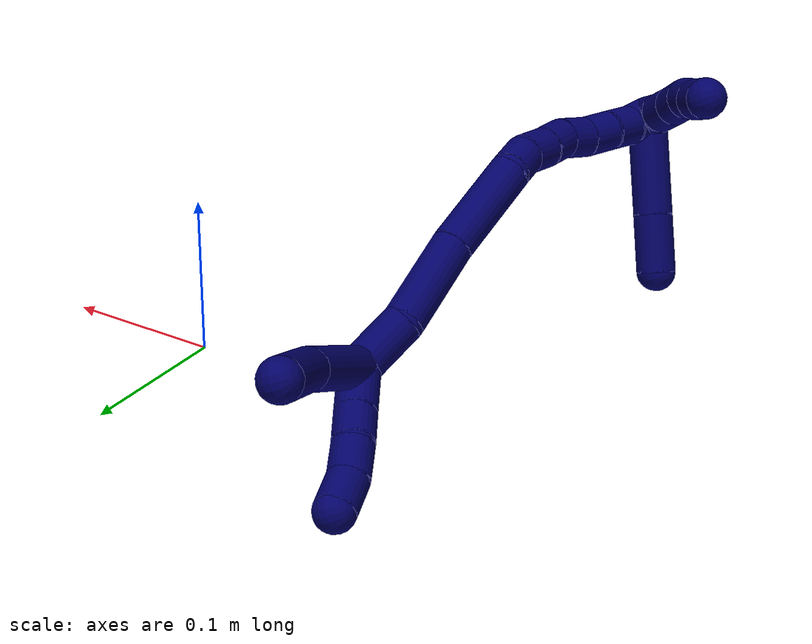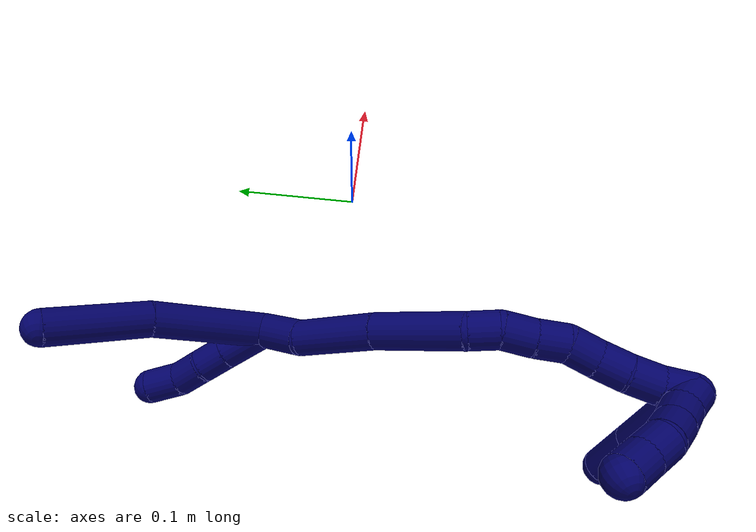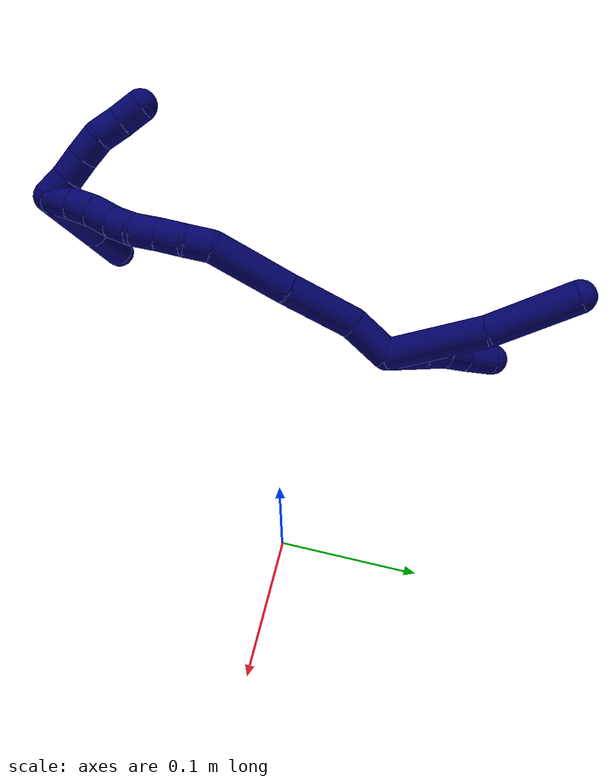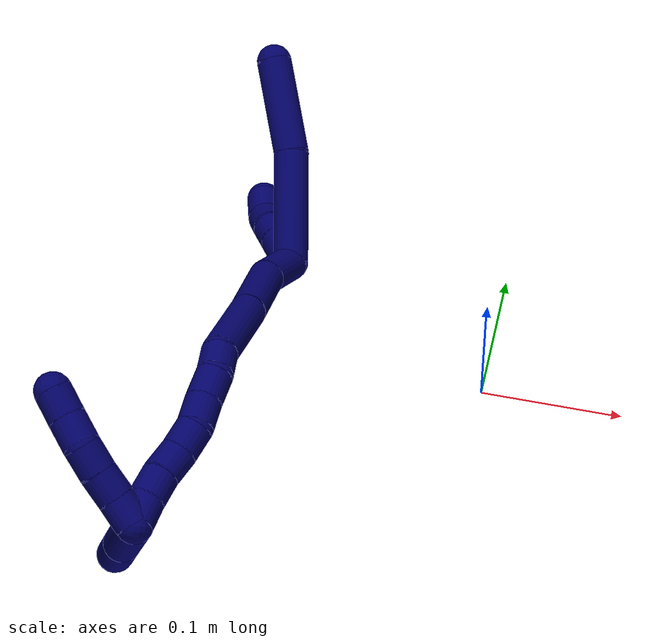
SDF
<sdf version="1.7">
 <world name="default">
  <model name="7">
   <static>0</static>
   <link name="7">
    <collision name="collision-cylinder-e_1_2_8">
     <pose>-0.007744 0.039438 0.002072 -1.51831 -0.193634 0.183786</pose>
     <geometry><cylinder><radius>0.0125</radius><length>0.080489</length></cylinder></geometry>
     <surface>
      <friction><ode><mu>1.16</mu><mu2>1.16</mu2><slip1>0</slip1><slip2>0</slip2></ode></friction>
      <contact><ode><kp>1e+06</kp><kd>1</kd><max_vel>0</max_vel><min_depth>0.001</min_depth></ode></contact>
     </surface>
    </collision>
    <visual name="visual-cylinder-e_1_2_8">
     <pose>-0.007744 0.039438 0.002072 -1.51831 -0.193634 0.183786</pose>
     <geometry><cylinder><radius>0.0125</radius><length>0.080489</length></cylinder></geometry>
     <material><ambient>0.003922 0 0.403922 1</ambient></material>
    </visual>
    <collision name="collision-cylinder-e_2_8_6">
     <pose>-0.02538 0.111405 0.011352 -1.35274 -0.288607 0.232229</pose>
     <geometry><cylinder><radius>0.0125</radius><length>0.069511</length></cylinder></geometry>
     <surface>
      <friction><ode><mu>1.16</mu><mu2>1.16</mu2><slip1>0</slip1><slip2>0</slip2></ode></friction>
      <contact><ode><kp>1e+06</kp><kd>1</kd><max_vel>0</max_vel><min_depth>0.001</min_depth></ode></contact>
     </surface>
    </collision>
    <visual name="visual-cylinder-e_2_8_6">
     <pose>-0.02538 0.111405 0.011352 -1.35274 -0.288607 0.232229</pose>
     <geometry><cylinder><radius>0.0125</radius><length>0.069511</length></cylinder></geometry>
     <material><ambient>0.003922 0 0.403922 1</ambient></material>
    </visual>
    <collision name="collision-cylinder-e_1_2_9">
     <pose>-0.014603 0.007884 -4e-06 -1.57131 -1.07578 1.07623</pose>
     <geometry><cylinder><radius>0.0125</radius><length>0.033191</length></cylinder></geometry>
     <surface>
      <friction><ode><mu>1.16</mu><mu2>1.16</mu2><slip1>0</slip1><slip2>0</slip2></ode></friction>
      <contact><ode><kp>1e+06</kp><kd>1</kd><max_vel>0</max_vel><min_depth>0.001</min_depth></ode></contact>
     </surface>
    </collision>
    <visual name="visual-cylinder-e_1_2_9">
     <pose>-0.014603 0.007884 -4e-06 -1.57131 -1.07578 1.07623</pose>
     <geometry><cylinder><radius>0.0125</radius><length>0.033191</length></cylinder></geometry>
     <material><ambient>0.003922 0 0.403922 1</ambient></material>
    </visual>
    <collision name="collision-cylinder-e_2_9_10">
     <pose>-0.038346 0.020643 5.1e-05 -1.5586 -1.08073 1.07</pose>
     <geometry><cylinder><radius>0.0125</radius><length>0.020718</length></cylinder></geometry>
     <surface>
      <friction><ode><mu>1.16</mu><mu2>1.16</mu2><slip1>0</slip1><slip2>0</slip2></ode></friction>
      <contact><ode><kp>1e+06</kp><kd>1</kd><max_vel>0</max_vel><min_depth>0.001</min_depth></ode></contact>
     </surface>
    </collision>
    <visual name="visual-cylinder-e_2_9_10">
     <pose>-0.038346 0.020643 5.1e-05 -1.5586 -1.08073 1.07</pose>
     <geometry><cylinder><radius>0.0125</radius><length>0.020718</length></cylinder></geometry>
     <material><ambient>0.003922 0 0.403922 1</ambient></material>
    </visual>
    <collision name="collision-cylinder-e_3_10_11">
     <pose>-0.057598 0.029373 -0.001285 -1.91824 -1.1856 1.53037</pose>
     <geometry><cylinder><radius>0.0125</radius><length>0.021824</length></cylinder></geometry>
     <surface>
      <friction><ode><mu>1.16</mu><mu2>1.16</mu2><slip1>0</slip1><slip2>0</slip2></ode></friction>
      <contact><ode><kp>1e+06</kp><kd>1</kd><max_vel>0</max_vel><min_depth>0.001</min_depth></ode></contact>
     </surface>
    </collision>
    <visual name="visual-cylinder-e_3_10_11">
     <pose>-0.057598 0.029373 -0.001285 -1.91824 -1.1856 1.53037</pose>
     <geometry><cylinder><radius>0.0125</radius><length>0.021824</length></cylinder></geometry>
     <material><ambient>0.003922 0 0.403922 1</ambient></material>
    </visual>
    <collision name="collision-cylinder-e_4_11_5">
     <pose>-0.077038 0.040693 -0.004803 -1.84774 -0.876883 1.11104</pose>
     <geometry><cylinder><radius>0.0125</radius><length>0.024268</length></cylinder></geometry>
     <surface>
      <friction><ode><mu>1.16</mu><mu2>1.16</mu2><slip1>0</slip1><slip2>0</slip2></ode></friction>
      <contact><ode><kp>1e+06</kp><kd>1</kd><max_vel>0</max_vel><min_depth>0.001</min_depth></ode></contact>
     </surface>
    </collision>
    <visual name="visual-cylinder-e_4_11_5">
     <pose>-0.077038 0.040693 -0.004803 -1.84774 -0.876883 1.11104</pose>
     <geometry><cylinder><radius>0.0125</radius><length>0.024268</length></cylinder></geometry>
     <material><ambient>0.003922 0 0.403922 1</ambient></material>
    </visual>
    <collision name="collision-cylinder-e_1_2_12">
     <pose>0.011266 -0.006708 0.012734 0.484819 0.664135 0.170125</pose>
     <geometry><cylinder><radius>0.0125</radius><length>0.036555</length></cylinder></geometry>
     <surface>
      <friction><ode><mu>1.16</mu><mu2>1.16</mu2><slip1>0</slip1><slip2>0</slip2></ode></friction>
      <contact><ode><kp>1e+06</kp><kd>1</kd><max_vel>0</max_vel><min_depth>0.001</min_depth></ode></contact>
     </surface>
    </collision>
    <visual name="visual-cylinder-e_1_2_12">
     <pose>0.011266 -0.006708 0.012734 0.484819 0.664135 0.170125</pose>
     <geometry><cylinder><radius>0.0125</radius><length>0.036555</length></cylinder></geometry>
     <material><ambient>0.003922 0 0.403922 1</ambient></material>
    </visual>
    <collision name="collision-cylinder-e_2_12_13">
     <pose>0.044536 -0.026628 0.039108 0.769514 0.858813 0.366681</pose>
     <geometry><cylinder><radius>0.0125</radius><length>0.058131</length></cylinder></geometry>
     <surface>
      <friction><ode><mu>1.16</mu><mu2>1.16</mu2><slip1>0</slip1><slip2>0</slip2></ode></friction>
      <contact><ode><kp>1e+06</kp><kd>1</kd><max_vel>0</max_vel><min_depth>0.001</min_depth></ode></contact>
     </surface>
    </collision>
    <visual name="visual-cylinder-e_2_12_13">
     <pose>0.044536 -0.026628 0.039108 0.769514 0.858813 0.366681</pose>
     <geometry><cylinder><radius>0.0125</radius><length>0.058131</length></cylinder></geometry>
     <material><ambient>0.003922 0 0.403922 1</ambient></material>
    </visual>
    <collision name="collision-cylinder-e_3_13_14">
     <pose>0.088861 -0.05535 0.069263 0.753951 0.777919 0.321715</pose>
     <geometry><cylinder><radius>0.0125</radius><length>0.063608</length></cylinder></geometry>
     <surface>
      <friction><ode><mu>1.16</mu><mu2>1.16</mu2><slip1>0</slip1><slip2>0</slip2></ode></friction>
      <contact><ode><kp>1e+06</kp><kd>1</kd><max_vel>0</max_vel><min_depth>0.001</min_depth></ode></contact>
     </surface>
    </collision>
    <visual name="visual-cylinder-e_3_13_14">
     <pose>0.088861 -0.05535 0.069263 0.753951 0.777919 0.321715</pose>
     <geometry><cylinder><radius>0.0125</radius><length>0.063608</length></cylinder></geometry>
     <material><ambient>0.003922 0 0.403922 1</ambient></material>
    </visual>
    <collision name="collision-cylinder-e_4_14_15">
     <pose>0.117567 -0.078121 0.088802 1.17637 0.681845 0.464677</pose>
     <geometry><cylinder><radius>0.0125</radius><length>0.020265</length></cylinder></geometry>
     <surface>
      <friction><ode><mu>1.16</mu><mu2>1.16</mu2><slip1>0</slip1><slip2>0</slip2></ode></friction>
      <contact><ode><kp>1e+06</kp><kd>1</kd><max_vel>0</max_vel><min_depth>0.001</min_depth></ode></contact>
     </surface>
    </collision>
    <visual name="visual-cylinder-e_4_14_15">
     <pose>0.117567 -0.078121 0.088802 1.17637 0.681845 0.464677</pose>
     <geometry><cylinder><radius>0.0125</radius><length>0.020265</length></cylinder></geometry>
     <material><ambient>0.003922 0 0.403922 1</ambient></material>
    </visual>
    <collision name="collision-cylinder-e_5_15_16">
     <pose>0.127628 -0.094435 0.095814 1.15566 0.355843 0.23345</pose>
     <geometry><cylinder><radius>0.0125</radius><length>0.021104</length></cylinder></geometry>
     <surface>
      <friction><ode><mu>1.16</mu><mu2>1.16</mu2><slip1>0</slip1><slip2>0</slip2></ode></friction>
      <contact><ode><kp>1e+06</kp><kd>1</kd><max_vel>0</max_vel><min_depth>0.001</min_depth></ode></contact>
     </surface>
    </collision>
    <visual name="visual-cylinder-e_5_15_16">
     <pose>0.127628 -0.094435 0.095814 1.15566 0.355843 0.23345</pose>
     <geometry><cylinder><radius>0.0125</radius><length>0.021104</length></cylinder></geometry>
     <material><ambient>0.003922 0 0.403922 1</ambient></material>
    </visual>
    <collision name="collision-cylinder-e_6_16_17">
     <pose>0.135618 -0.112046 0.103157 1.19747 0.438726 0.301914</pose>
     <geometry><cylinder><radius>0.0125</radius><length>0.020311</length></cylinder></geometry>
     <surface>
      <friction><ode><mu>1.16</mu><mu2>1.16</mu2><slip1>0</slip1><slip2>0</slip2></ode></friction>
      <contact><ode><kp>1e+06</kp><kd>1</kd><max_vel>0</max_vel><min_depth>0.001</min_depth></ode></contact>
     </surface>
    </collision>
    <visual name="visual-cylinder-e_6_16_17">
     <pose>0.135618 -0.112046 0.103157 1.19747 0.438726 0.301914</pose>
     <geometry><cylinder><radius>0.0125</radius><length>0.020311</length></cylinder></geometry>
     <material><ambient>0.003922 0 0.403922 1</ambient></material>
    </visual>
    <collision name="collision-cylinder-e_7_17_18">
     <pose>0.141327 -0.12923 0.111402 1.05477 0.139746 0.081477</pose>
     <geometry><cylinder><radius>0.0125</radius><length>0.020025</length></cylinder></geometry>
     <surface>
      <friction><ode><mu>1.16</mu><mu2>1.16</mu2><slip1>0</slip1><slip2>0</slip2></ode></friction>
      <contact><ode><kp>1e+06</kp><kd>1</kd><max_vel>0</max_vel><min_depth>0.001</min_depth></ode></contact>
     </surface>
    </collision>
    <visual name="visual-cylinder-e_7_17_18">
     <pose>0.141327 -0.12923 0.111402 1.05477 0.139746 0.081477</pose>
     <geometry><cylinder><radius>0.0125</radius><length>0.020025</length></cylinder></geometry>
     <material><ambient>0.003922 0 0.403922 1</ambient></material>
    </visual>
    <collision name="collision-cylinder-e_8_18_19">
     <pose>0.145241 -0.145498 0.122231 0.910436 0.254678 0.125181</pose>
     <geometry><cylinder><radius>0.0125</radius><length>0.02</length></cylinder></geometry>
     <surface>
      <friction><ode><mu>1.16</mu><mu2>1.16</mu2><slip1>0</slip1><slip2>0</slip2></ode></friction>
      <contact><ode><kp>1e+06</kp><kd>1</kd><max_vel>0</max_vel><min_depth>0.001</min_depth></ode></contact>
     </surface>
    </collision>
    <visual name="visual-cylinder-e_8_18_19">
     <pose>0.145241 -0.145498 0.122231 0.910436 0.254678 0.125181</pose>
     <geometry><cylinder><radius>0.0125</radius><length>0.02</length></cylinder></geometry>
     <material><ambient>0.003922 0 0.403922 1</ambient></material>
    </visual>
    <collision name="collision-cylinder-e_9_19_20">
     <pose>0.15051 -0.161495 0.132927 1.05291 0.278504 0.162552</pose>
     <geometry><cylinder><radius>0.0125</radius><length>0.02</length></cylinder></geometry>
     <surface>
      <friction><ode><mu>1.16</mu><mu2>1.16</mu2><slip1>0</slip1><slip2>0</slip2></ode></friction>
      <contact><ode><kp>1e+06</kp><kd>1</kd><max_vel>0</max_vel><min_depth>0.001</min_depth></ode></contact>
     </surface>
    </collision>
    <visual name="visual-cylinder-e_9_19_20">
     <pose>0.15051 -0.161495 0.132927 1.05291 0.278504 0.162552</pose>
     <geometry><cylinder><radius>0.0125</radius><length>0.02</length></cylinder></geometry>
     <material><ambient>0.003922 0 0.403922 1</ambient></material>
    </visual>
    <collision name="collision-cylinder-e_10_20_1">
     <pose>0.157369 -0.177884 0.141992 1.07893 0.42355 0.256032</pose>
     <geometry><cylinder><radius>0.0125</radius><length>0.02</length></cylinder></geometry>
     <surface>
      <friction><ode><mu>1.16</mu><mu2>1.16</mu2><slip1>0</slip1><slip2>0</slip2></ode></friction>
      <contact><ode><kp>1e+06</kp><kd>1</kd><max_vel>0</max_vel><min_depth>0.001</min_depth></ode></contact>
     </surface>
    </collision>
    <visual name="visual-cylinder-e_10_20_1">
     <pose>0.157369 -0.177884 0.141992 1.07893 0.42355 0.256032</pose>
     <geometry><cylinder><radius>0.0125</radius><length>0.02</length></cylinder></geometry>
     <material><ambient>0.003922 0 0.403922 1</ambient></material>
    </visual>
    <collision name="collision-cylinder-e_1_1_21">
     <pose>0.132074 -0.194259 0.139471 2.25679 -1.21951 -1.94978</pose>
     <geometry><cylinder><radius>0.0125</radius><length>0.062635</length></cylinder></geometry>
     <surface>
      <friction><ode><mu>1.16</mu><mu2>1.16</mu2><slip1>0</slip1><slip2>0</slip2></ode></friction>
      <contact><ode><kp>1e+06</kp><kd>1</kd><max_vel>0</max_vel><min_depth>0.001</min_depth></ode></contact>
     </surface>
    </collision>
    <visual name="visual-cylinder-e_1_1_21">
     <pose>0.132074 -0.194259 0.139471 2.25679 -1.21951 -1.94978</pose>
     <geometry><cylinder><radius>0.0125</radius><length>0.062635</length></cylinder></geometry>
     <material><ambient>0.003922 0 0.403922 1</ambient></material>
    </visual>
    <collision name="collision-cylinder-e_2_21_4">
     <pose>0.085144 -0.20759 0.128524 2.26085 -1.21697 -1.95216</pose>
     <geometry><cylinder><radius>0.0125</radius><length>0.037365</length></cylinder></geometry>
     <surface>
      <friction><ode><mu>1.16</mu><mu2>1.16</mu2><slip1>0</slip1><slip2>0</slip2></ode></friction>
      <contact><ode><kp>1e+06</kp><kd>1</kd><max_vel>0</max_vel><min_depth>0.001</min_depth></ode></contact>
     </surface>
    </collision>
    <visual name="visual-cylinder-e_2_21_4">
     <pose>0.085144 -0.20759 0.128524 2.26085 -1.21697 -1.95216</pose>
     <geometry><cylinder><radius>0.0125</radius><length>0.037365</length></cylinder></geometry>
     <material><ambient>0.003922 0 0.403922 1</ambient></material>
    </visual>
    <collision name="collision-cylinder-e_1_1_22">
     <pose>0.158536 -0.178444 0.152251 -0.898263 -0.29869 0.14479</pose>
     <geometry><cylinder><radius>0.0125</radius><length>0.02</length></cylinder></geometry>
     <surface>
      <friction><ode><mu>1.16</mu><mu2>1.16</mu2><slip1>0</slip1><slip2>0</slip2></ode></friction>
      <contact><ode><kp>1e+06</kp><kd>1</kd><max_vel>0</max_vel><min_depth>0.001</min_depth></ode></contact>
     </surface>
    </collision>
    <visual name="visual-cylinder-e_1_1_22">
     <pose>0.158536 -0.178444 0.152251 -0.898263 -0.29869 0.14479</pose>
     <geometry><cylinder><radius>0.0125</radius><length>0.02</length></cylinder></geometry>
     <material><ambient>0.003922 0 0.403922 1</ambient></material>
    </visual>
    <collision name="collision-cylinder-e_2_22_23">
     <pose>0.153845 -0.16361 0.164747 -0.844079 -0.175738 0.079072</pose>
     <geometry><cylinder><radius>0.0125</radius><length>0.02</length></cylinder></geometry>
     <surface>
      <friction><ode><mu>1.16</mu><mu2>1.16</mu2><slip1>0</slip1><slip2>0</slip2></ode></friction>
      <contact><ode><kp>1e+06</kp><kd>1</kd><max_vel>0</max_vel><min_depth>0.001</min_depth></ode></contact>
     </surface>
    </collision>
    <visual name="visual-cylinder-e_2_22_23">
     <pose>0.153845 -0.16361 0.164747 -0.844079 -0.175738 0.079072</pose>
     <geometry><cylinder><radius>0.0125</radius><length>0.02</length></cylinder></geometry>
     <material><ambient>0.003922 0 0.403922 1</ambient></material>
    </visual>
    <collision name="collision-cylinder-e_3_23_24">
     <pose>0.150424 -0.148421 0.17728 -0.917614 -0.168107 0.083187</pose>
     <geometry><cylinder><radius>0.0125</radius><length>0.02</length></cylinder></geometry>
     <surface>
      <friction><ode><mu>1.16</mu><mu2>1.16</mu2><slip1>0</slip1><slip2>0</slip2></ode></friction>
      <contact><ode><kp>1e+06</kp><kd>1</kd><max_vel>0</max_vel><min_depth>0.001</min_depth></ode></contact>
     </surface>
    </collision>
    <visual name="visual-cylinder-e_3_23_24">
     <pose>0.150424 -0.148421 0.17728 -0.917614 -0.168107 0.083187</pose>
     <geometry><cylinder><radius>0.0125</radius><length>0.02</length></cylinder></geometry>
     <material><ambient>0.003922 0 0.403922 1</ambient></material>
    </visual>
    <collision name="collision-cylinder-e_4_24_25">
     <pose>0.14449 -0.132772 0.18782 -1.04401 -0.440164 0.255958</pose>
     <geometry><cylinder><radius>0.0125</radius><length>0.02</length></cylinder></geometry>
     <surface>
      <friction><ode><mu>1.16</mu><mu2>1.16</mu2><slip1>0</slip1><slip2>0</slip2></ode></friction>
      <contact><ode><kp>1e+06</kp><kd>1</kd><max_vel>0</max_vel><min_depth>0.001</min_depth></ode></contact>
     </surface>
    </collision>
    <visual name="visual-cylinder-e_4_24_25">
     <pose>0.14449 -0.132772 0.18782 -1.04401 -0.440164 0.255958</pose>
     <geometry><cylinder><radius>0.0125</radius><length>0.02</length></cylinder></geometry>
     <material><ambient>0.003922 0 0.403922 1</ambient></material>
    </visual>
    <collision name="collision-cylinder-e_5_25_3">
     <pose>0.136669 -0.116899 0.197111 -1.03849 -0.364006 0.209609</pose>
     <geometry><cylinder><radius>0.0125</radius><length>0.02</length></cylinder></geometry>
     <surface>
      <friction><ode><mu>1.16</mu><mu2>1.16</mu2><slip1>0</slip1><slip2>0</slip2></ode></friction>
      <contact><ode><kp>1e+06</kp><kd>1</kd><max_vel>0</max_vel><min_depth>0.001</min_depth></ode></contact>
     </surface>
    </collision>
    <visual name="visual-cylinder-e_5_25_3">
     <pose>0.136669 -0.116899 0.197111 -1.03849 -0.364006 0.209609</pose>
     <geometry><cylinder><radius>0.0125</radius><length>0.02</length></cylinder></geometry>
     <material><ambient>0.003922 0 0.403922 1</ambient></material>
    </visual>
    <collision name="collision-sphere-3">
     <pose>0.133108 -0.108848 0.201854 0 -0 0</pose>
     <geometry><sphere><radius>0.0125</radius></sphere></geometry>
     <surface>
      <friction><ode><mu>1.16</mu><mu2>1.16</mu2><slip1>0</slip1><slip2>0</slip2></ode></friction>
      <contact><ode><kp>1e+06</kp><kd>1</kd><max_vel>0</max_vel><min_depth>0.001</min_depth></ode></contact>
     </surface>
    </collision>
    <visual name="visual-sphere-3">
     <pose>0.133108 -0.108848 0.201854 0 -0 0</pose>
     <geometry><sphere><radius>0.0125</radius></sphere></geometry>
     <material><ambient>0.003922 0 0.403922 1</ambient></material>
    </visual>
    <collision name="collision-sphere-25">
     <pose>0.140229 -0.124951 0.192369 0 -0 0</pose>
     <geometry><sphere><radius>0.0125</radius></sphere></geometry>
     <surface>
      <friction><ode><mu>1.16</mu><mu2>1.16</mu2><slip1>0</slip1><slip2>0</slip2></ode></friction>
      <contact><ode><kp>1e+06</kp><kd>1</kd><max_vel>0</max_vel><min_depth>0.001</min_depth></ode></contact>
     </surface>
    </collision>
    <visual name="visual-sphere-25">
     <pose>0.140229 -0.124951 0.192369 0 -0 0</pose>
     <geometry><sphere><radius>0.0125</radius></sphere></geometry>
     <material><ambient>0.003922 0 0.403922 1</ambient></material>
    </visual>
    <collision name="collision-sphere-24">
     <pose>0.148751 -0.140592 0.183272 0 -0 0</pose>
     <geometry><sphere><radius>0.0125</radius></sphere></geometry>
     <surface>
      <friction><ode><mu>1.16</mu><mu2>1.16</mu2><slip1>0</slip1><slip2>0</slip2></ode></friction>
      <contact><ode><kp>1e+06</kp><kd>1</kd><max_vel>0</max_vel><min_depth>0.001</min_depth></ode></contact>
     </surface>
    </collision>
    <visual name="visual-sphere-24">
     <pose>0.148751 -0.140592 0.183272 0 -0 0</pose>
     <geometry><sphere><radius>0.0125</radius></sphere></geometry>
     <material><ambient>0.003922 0 0.403922 1</ambient></material>
    </visual>
    <collision name="collision-sphere-23">
     <pose>0.152097 -0.156251 0.171289 0 -0 0</pose>
     <geometry><sphere><radius>0.0125</radius></sphere></geometry>
     <surface>
      <friction><ode><mu>1.16</mu><mu2>1.16</mu2><slip1>0</slip1><slip2>0</slip2></ode></friction>
      <contact><ode><kp>1e+06</kp><kd>1</kd><max_vel>0</max_vel><min_depth>0.001</min_depth></ode></contact>
     </surface>
    </collision>
    <visual name="visual-sphere-23">
     <pose>0.152097 -0.156251 0.171289 0 -0 0</pose>
     <geometry><sphere><radius>0.0125</radius></sphere></geometry>
     <material><ambient>0.003922 0 0.403922 1</ambient></material>
    </visual>
    <collision name="collision-sphere-22">
     <pose>0.155594 -0.170968 0.158205 0 -0 0</pose>
     <geometry><sphere><radius>0.0125</radius></sphere></geometry>
     <surface>
      <friction><ode><mu>1.16</mu><mu2>1.16</mu2><slip1>0</slip1><slip2>0</slip2></ode></friction>
      <contact><ode><kp>1e+06</kp><kd>1</kd><max_vel>0</max_vel><min_depth>0.001</min_depth></ode></contact>
     </surface>
    </collision>
    <visual name="visual-sphere-22">
     <pose>0.155594 -0.170968 0.158205 0 -0 0</pose>
     <geometry><sphere><radius>0.0125</radius></sphere></geometry>
     <material><ambient>0.003922 0 0.403922 1</ambient></material>
    </visual>
    <collision name="collision-sphere-4">
     <pose>0.067619 -0.212582 0.124403 0 -0 0</pose>
     <geometry><sphere><radius>0.0125</radius></sphere></geometry>
     <surface>
      <friction><ode><mu>1.16</mu><mu2>1.16</mu2><slip1>0</slip1><slip2>0</slip2></ode></friction>
      <contact><ode><kp>1e+06</kp><kd>1</kd><max_vel>0</max_vel><min_depth>0.001</min_depth></ode></contact>
     </surface>
    </collision>
    <visual name="visual-sphere-4">
     <pose>0.067619 -0.212582 0.124403 0 -0 0</pose>
     <geometry><sphere><radius>0.0125</radius></sphere></geometry>
     <material><ambient>0.003922 0 0.403922 1</ambient></material>
    </visual>
    <collision name="collision-sphere-21">
     <pose>0.102669 -0.202598 0.132645 0 -0 0</pose>
     <geometry><sphere><radius>0.0125</radius></sphere></geometry>
     <surface>
      <friction><ode><mu>1.16</mu><mu2>1.16</mu2><slip1>0</slip1><slip2>0</slip2></ode></friction>
      <contact><ode><kp>1e+06</kp><kd>1</kd><max_vel>0</max_vel><min_depth>0.001</min_depth></ode></contact>
     </surface>
    </collision>
    <visual name="visual-sphere-21">
     <pose>0.102669 -0.202598 0.132645 0 -0 0</pose>
     <geometry><sphere><radius>0.0125</radius></sphere></geometry>
     <material><ambient>0.003922 0 0.403922 1</ambient></material>
    </visual>
    <collision name="collision-sphere-1">
     <pose>0.161479 -0.18592 0.146297 0 -0 0</pose>
     <geometry><sphere><radius>0.0125</radius></sphere></geometry>
     <surface>
      <friction><ode><mu>1.16</mu><mu2>1.16</mu2><slip1>0</slip1><slip2>0</slip2></ode></friction>
      <contact><ode><kp>1e+06</kp><kd>1</kd><max_vel>0</max_vel><min_depth>0.001</min_depth></ode></contact>
     </surface>
    </collision>
    <visual name="visual-sphere-1">
     <pose>0.161479 -0.18592 0.146297 0 -0 0</pose>
     <geometry><sphere><radius>0.0125</radius></sphere></geometry>
     <material><ambient>0.003922 0 0.403922 1</ambient></material>
    </visual>
    <collision name="collision-sphere-11">
     <pose>-0.06771 0.033228 -0.002681 0 -0 0</pose>
     <geometry><sphere><radius>0.0125</radius></sphere></geometry>
     <surface>
      <friction><ode><mu>1.16</mu><mu2>1.16</mu2><slip1>0</slip1><slip2>0</slip2></ode></friction>
      <contact><ode><kp>1e+06</kp><kd>1</kd><max_vel>0</max_vel><min_depth>0.001</min_depth></ode></contact>
     </surface>
    </collision>
    <visual name="visual-sphere-11">
     <pose>-0.06771 0.033228 -0.002681 0 -0 0</pose>
     <geometry><sphere><radius>0.0125</radius></sphere></geometry>
     <material><ambient>0.003922 0 0.403922 1</ambient></material>
    </visual>
    <collision name="collision-sphere-10">
     <pose>-0.047486 0.025518 0.000111 0 -0 0</pose>
     <geometry><sphere><radius>0.0125</radius></sphere></geometry>
     <surface>
      <friction><ode><mu>1.16</mu><mu2>1.16</mu2><slip1>0</slip1><slip2>0</slip2></ode></friction>
      <contact><ode><kp>1e+06</kp><kd>1</kd><max_vel>0</max_vel><min_depth>0.001</min_depth></ode></contact>
     </surface>
    </collision>
    <visual name="visual-sphere-10">
     <pose>-0.047486 0.025518 0.000111 0 -0 0</pose>
     <geometry><sphere><radius>0.0125</radius></sphere></geometry>
     <material><ambient>0.003922 0 0.403922 1</ambient></material>
    </visual>
    <collision name="collision-sphere-6">
     <pose>-0.035272 0.143934 0.01856 0 -0 0</pose>
     <geometry><sphere><radius>0.0125</radius></sphere></geometry>
     <surface>
      <friction><ode><mu>1.16</mu><mu2>1.16</mu2><slip1>0</slip1><slip2>0</slip2></ode></friction>
      <contact><ode><kp>1e+06</kp><kd>1</kd><max_vel>0</max_vel><min_depth>0.001</min_depth></ode></contact>
     </surface>
    </collision>
    <visual name="visual-sphere-6">
     <pose>-0.035272 0.143934 0.01856 0 -0 0</pose>
     <geometry><sphere><radius>0.0125</radius></sphere></geometry>
     <material><ambient>0.003922 0 0.403922 1</ambient></material>
    </visual>
    <collision name="collision-sphere-9">
     <pose>-0.029207 0.015767 -8e-06 0 -0 0</pose>
     <geometry><sphere><radius>0.0125</radius></sphere></geometry>
     <surface>
      <friction><ode><mu>1.16</mu><mu2>1.16</mu2><slip1>0</slip1><slip2>0</slip2></ode></friction>
      <contact><ode><kp>1e+06</kp><kd>1</kd><max_vel>0</max_vel><min_depth>0.001</min_depth></ode></contact>
     </surface>
    </collision>
    <visual name="visual-sphere-9">
     <pose>-0.029207 0.015767 -8e-06 0 -0 0</pose>
     <geometry><sphere><radius>0.0125</radius></sphere></geometry>
     <material><ambient>0.003922 0 0.403922 1</ambient></material>
    </visual>
    <collision name="collision-sphere-2">
     <geometry><sphere><radius>0.0125</radius></sphere></geometry>
     <surface>
      <friction><ode><mu>1.16</mu><mu2>1.16</mu2><slip1>0</slip1><slip2>0</slip2></ode></friction>
      <contact><ode><kp>1e+06</kp><kd>1</kd><max_vel>0</max_vel><min_depth>0.001</min_depth></ode></contact>
     </surface>
    </collision>
    <visual name="visual-sphere-2">
     <geometry><sphere><radius>0.0125</radius></sphere></geometry>
     <material><ambient>0.003922 0 0.403922 1</ambient></material>
    </visual>
    <collision name="collision-sphere-19">
     <pose>0.14776 -0.153141 0.128167 0 -0 0</pose>
     <geometry><sphere><radius>0.0125</radius></sphere></geometry>
     <surface>
      <friction><ode><mu>1.16</mu><mu2>1.16</mu2><slip1>0</slip1><slip2>0</slip2></ode></friction>
      <contact><ode><kp>1e+06</kp><kd>1</kd><max_vel>0</max_vel><min_depth>0.001</min_depth></ode></contact>
     </surface>
    </collision>
    <visual name="visual-sphere-19">
     <pose>0.14776 -0.153141 0.128167 0 -0 0</pose>
     <geometry><sphere><radius>0.0125</radius></sphere></geometry>
     <material><ambient>0.003922 0 0.403922 1</ambient></material>
    </visual>
    <collision name="collision-sphere-8">
     <pose>-0.015488 0.078876 0.004144 0 -0 0</pose>
     <geometry><sphere><radius>0.0125</radius></sphere></geometry>
     <surface>
      <friction><ode><mu>1.16</mu><mu2>1.16</mu2><slip1>0</slip1><slip2>0</slip2></ode></friction>
      <contact><ode><kp>1e+06</kp><kd>1</kd><max_vel>0</max_vel><min_depth>0.001</min_depth></ode></contact>
     </surface>
    </collision>
    <visual name="visual-sphere-8">
     <pose>-0.015488 0.078876 0.004144 0 -0 0</pose>
     <geometry><sphere><radius>0.0125</radius></sphere></geometry>
     <material><ambient>0.003922 0 0.403922 1</ambient></material>
    </visual>
    <collision name="collision-sphere-5">
     <pose>-0.086366 0.048157 -0.006925 0 -0 0</pose>
     <geometry><sphere><radius>0.0125</radius></sphere></geometry>
     <surface>
      <friction><ode><mu>1.16</mu><mu2>1.16</mu2><slip1>0</slip1><slip2>0</slip2></ode></friction>
      <contact><ode><kp>1e+06</kp><kd>1</kd><max_vel>0</max_vel><min_depth>0.001</min_depth></ode></contact>
     </surface>
    </collision>
    <visual name="visual-sphere-5">
     <pose>-0.086366 0.048157 -0.006925 0 -0 0</pose>
     <geometry><sphere><radius>0.0125</radius></sphere></geometry>
     <material><ambient>0.003922 0 0.403922 1</ambient></material>
    </visual>
    <collision name="collision-sphere-12">
     <pose>0.022532 -0.013415 0.025468 0 -0 0</pose>
     <geometry><sphere><radius>0.0125</radius></sphere></geometry>
     <surface>
      <friction><ode><mu>1.16</mu><mu2>1.16</mu2><slip1>0</slip1><slip2>0</slip2></ode></friction>
      <contact><ode><kp>1e+06</kp><kd>1</kd><max_vel>0</max_vel><min_depth>0.001</min_depth></ode></contact>
     </surface>
    </collision>
    <visual name="visual-sphere-12">
     <pose>0.022532 -0.013415 0.025468 0 -0 0</pose>
     <geometry><sphere><radius>0.0125</radius></sphere></geometry>
     <material><ambient>0.003922 0 0.403922 1</ambient></material>
    </visual>
    <collision name="collision-sphere-13">
     <pose>0.066541 -0.039841 0.052747 0 -0 0</pose>
     <geometry><sphere><radius>0.0125</radius></sphere></geometry>
     <surface>
      <friction><ode><mu>1.16</mu><mu2>1.16</mu2><slip1>0</slip1><slip2>0</slip2></ode></friction>
      <contact><ode><kp>1e+06</kp><kd>1</kd><max_vel>0</max_vel><min_depth>0.001</min_depth></ode></contact>
     </surface>
    </collision>
    <visual name="visual-sphere-13">
     <pose>0.066541 -0.039841 0.052747 0 -0 0</pose>
     <geometry><sphere><radius>0.0125</radius></sphere></geometry>
     <material><ambient>0.003922 0 0.403922 1</ambient></material>
    </visual>
    <collision name="collision-sphere-14">
     <pose>0.111181 -0.070858 0.085779 0 -0 0</pose>
     <geometry><sphere><radius>0.0125</radius></sphere></geometry>
     <surface>
      <friction><ode><mu>1.16</mu><mu2>1.16</mu2><slip1>0</slip1><slip2>0</slip2></ode></friction>
      <contact><ode><kp>1e+06</kp><kd>1</kd><max_vel>0</max_vel><min_depth>0.001</min_depth></ode></contact>
     </surface>
    </collision>
    <visual name="visual-sphere-14">
     <pose>0.111181 -0.070858 0.085779 0 -0 0</pose>
     <geometry><sphere><radius>0.0125</radius></sphere></geometry>
     <material><ambient>0.003922 0 0.403922 1</ambient></material>
    </visual>
    <collision name="collision-sphere-15">
     <pose>0.123952 -0.085384 0.091825 0 -0 0</pose>
     <geometry><sphere><radius>0.0125</radius></sphere></geometry>
     <surface>
      <friction><ode><mu>1.16</mu><mu2>1.16</mu2><slip1>0</slip1><slip2>0</slip2></ode></friction>
      <contact><ode><kp>1e+06</kp><kd>1</kd><max_vel>0</max_vel><min_depth>0.001</min_depth></ode></contact>
     </surface>
    </collision>
    <visual name="visual-sphere-15">
     <pose>0.123952 -0.085384 0.091825 0 -0 0</pose>
     <geometry><sphere><radius>0.0125</radius></sphere></geometry>
     <material><ambient>0.003922 0 0.403922 1</ambient></material>
    </visual>
    <collision name="collision-sphere-16">
     <pose>0.131305 -0.103486 0.099804 0 -0 0</pose>
     <geometry><sphere><radius>0.0125</radius></sphere></geometry>
     <surface>
      <friction><ode><mu>1.16</mu><mu2>1.16</mu2><slip1>0</slip1><slip2>0</slip2></ode></friction>
      <contact><ode><kp>1e+06</kp><kd>1</kd><max_vel>0</max_vel><min_depth>0.001</min_depth></ode></contact>
     </surface>
    </collision>
    <visual name="visual-sphere-16">
     <pose>0.131305 -0.103486 0.099804 0 -0 0</pose>
     <geometry><sphere><radius>0.0125</radius></sphere></geometry>
     <material><ambient>0.003922 0 0.403922 1</ambient></material>
    </visual>
    <collision name="collision-sphere-17">
     <pose>0.139932 -0.120606 0.10651 0 -0 0</pose>
     <geometry><sphere><radius>0.0125</radius></sphere></geometry>
     <surface>
      <friction><ode><mu>1.16</mu><mu2>1.16</mu2><slip1>0</slip1><slip2>0</slip2></ode></friction>
      <contact><ode><kp>1e+06</kp><kd>1</kd><max_vel>0</max_vel><min_depth>0.001</min_depth></ode></contact>
     </surface>
    </collision>
    <visual name="visual-sphere-17">
     <pose>0.139932 -0.120606 0.10651 0 -0 0</pose>
     <geometry><sphere><radius>0.0125</radius></sphere></geometry>
     <material><ambient>0.003922 0 0.403922 1</ambient></material>
    </visual>
    <collision name="collision-sphere-18">
     <pose>0.142722 -0.137854 0.116294 0 -0 0</pose>
     <geometry><sphere><radius>0.0125</radius></sphere></geometry>
     <surface>
      <friction><ode><mu>1.16</mu><mu2>1.16</mu2><slip1>0</slip1><slip2>0</slip2></ode></friction>
      <contact><ode><kp>1e+06</kp><kd>1</kd><max_vel>0</max_vel><min_depth>0.001</min_depth></ode></contact>
     </surface>
    </collision>
    <visual name="visual-sphere-18">
     <pose>0.142722 -0.137854 0.116294 0 -0 0</pose>
     <geometry><sphere><radius>0.0125</radius></sphere></geometry>
     <material><ambient>0.003922 0 0.403922 1</ambient></material>
    </visual>
    <collision name="collision-sphere-20">
     <pose>0.153259 -0.169849 0.137686 0 -0 0</pose>
     <geometry><sphere><radius>0.0125</radius></sphere></geometry>
     <surface>
      <friction><ode><mu>1.16</mu><mu2>1.16</mu2><slip1>0</slip1><slip2>0</slip2></ode></friction>
      <contact><ode><kp>1e+06</kp><kd>1</kd><max_vel>0</max_vel><min_depth>0.001</min_depth></ode></contact>
     </surface>
    </collision>
    <visual name="visual-sphere-20">
     <pose>0.153259 -0.169849 0.137686 0 -0 0</pose>
     <geometry><sphere><radius>0.0125</radius></sphere></geometry>
     <material><ambient>0.003922 0 0.403922 1</ambient></material>
    </visual>
    <inertial>
     <pose>0.063888 -0.059923 0.07356 0 -0 0</pose>
     <mass>0.75</mass>
     <inertia>
      <ixx>0.000137</ixx>
      <ixy>0</ixy>
      <ixz>0</ixz>
      <iyy>0.000125</iyy>
      <iyz>0</iyz>
      <izz>-1.4e-05</izz>
     </inertia>
    </inertial>
   </link>
   <pose>-0.148417 0.04606 0.052836 0.970494 -0.803674 -0.75886</pose>
  </model>
 </world>
</sdf>
